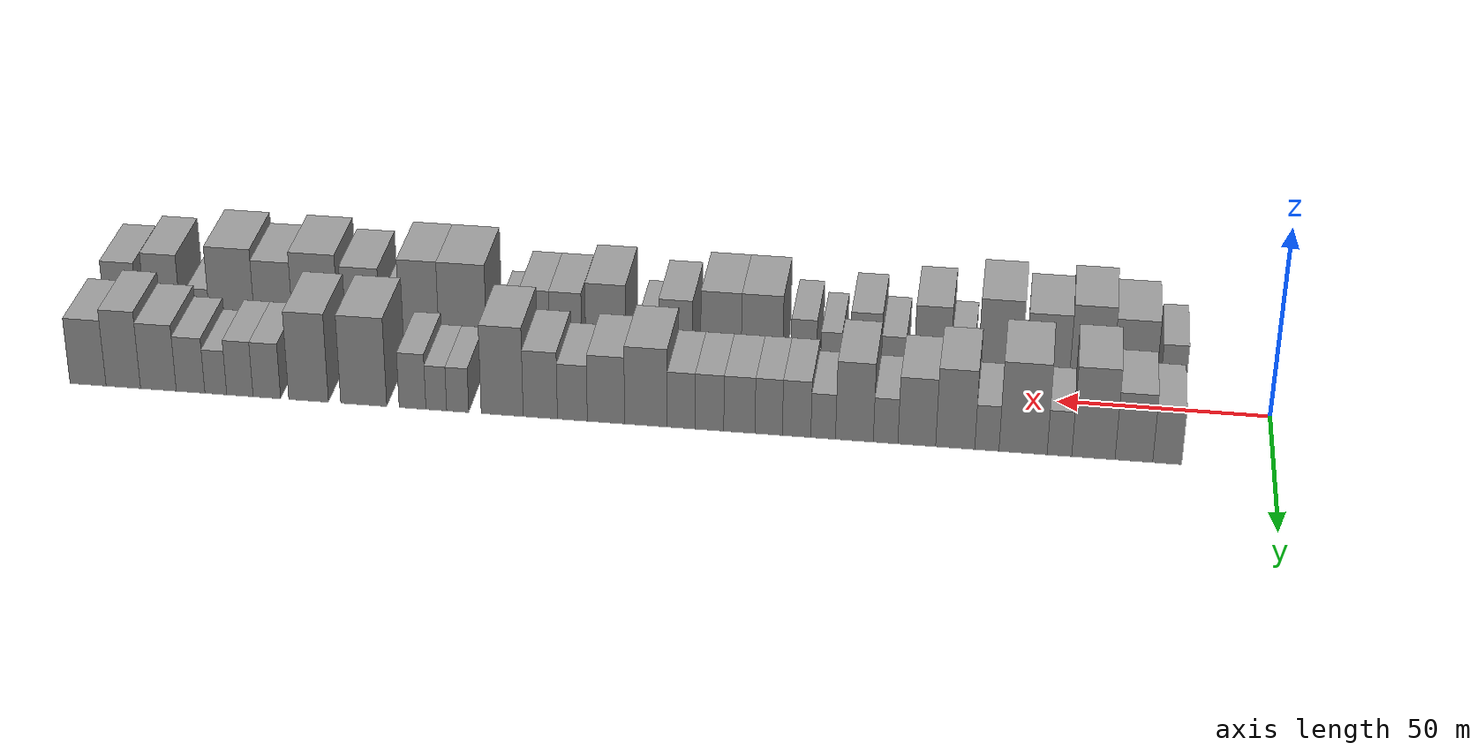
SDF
<sdf version="1.6">
 <world name="default">
  <scene>
   <sky><clouds><speed>12</speed></clouds></sky>
   <ambient>0.4 0.4 0.4 1</ambient>
   <background>0.7 0.7 0.7 1</background>
   <shadows>1</shadows>
  </scene>
  <gravity>0 0 -9.8066</gravity>
  <magnetic_field>6e-06 2.3e-05 -4.2e-05</magnetic_field>
  <physics default="0" name="default_physics" type="ode">
   <ode>
    <solver>
     <type>quick</type>
     <iters>10</iters>
     <sor>1.0</sor>
     <use_dynamic_moi_rescaling>0</use_dynamic_moi_rescaling>
    </solver>
    <constraints>
     <cfm>0</cfm>
     <erp>0.2</erp>
     <contact_max_correcting_vel>100</contact_max_correcting_vel>
     <contact_surface_layer>0.001</contact_surface_layer>
    </constraints>
   </ode>
   <max_step_size>0.004</max_step_size>
   <real_time_factor>1</real_time_factor>
   <real_time_update_rate>250</real_time_update_rate>
  </physics>
  <light name="sun" type="directional">
   <pose>0 0 10 0 0 0</pose>
   <diffuse>0.8 0.8 0.8 1</diffuse>
   <specular>0.2 0.2 0.2 1</specular>
   <attenuation>
    <range>1000</range>
    <constant>0.9</constant>
    <linear>0.01</linear>
    <quadratic>0.001</quadratic>
   </attenuation>
   <direction>-0.5 0.1 -0.9</direction>
  </light>
  <model name="building_1">
   <static>1</static>
   <pose>24.3070 14.5000 0 0.000000 0.000000 1.570796</pose>
   <link name="link">
    <pose>0 0 7.50 0 0 0</pose>
    <collision name="collision"><geometry><box><size>20.0000 6.6139 15.0000</size></box></geometry></collision>
    <visual name="visual">
     <cast_shadows>0</cast_shadows>
     <geometry><box><size>20.0000 6.6139 15.0000</size></box></geometry>
     <material>
      <script>
       <uri>model://grey_wall/materials/scripts</uri>
       <uri>model://grey_wall/materials/textures</uri>
       <name>vrc/grey_wall</name>
      </script>
     </material>
    </visual>
   </link>
  </model>
  <model name="building_2">
   <static>1</static>
   <pose>31.9232 14.5000 0 0.000000 0.000000 1.570796</pose>
   <link name="link">
    <pose>0 0 9.00 0 0 0</pose>
    <collision name="collision"><geometry><box><size>20.0000 8.6186 18.0000</size></box></geometry></collision>
    <visual name="visual">
     <cast_shadows>0</cast_shadows>
     <geometry><box><size>20.0000 8.6186 18.0000</size></box></geometry>
     <material>
      <script>
       <uri>model://grey_wall/materials/scripts</uri>
       <uri>model://grey_wall/materials/textures</uri>
       <name>vrc/grey_wall</name>
      </script>
     </material>
    </visual>
   </link>
  </model>
  <model name="building_3">
   <static>1</static>
   <pose>41.1928 14.5000 0 0.000000 0.000000 1.570796</pose>
   <link name="link">
    <pose>0 0 12.00 0 0 0</pose>
    <collision name="collision"><geometry><box><size>20.0000 9.9206 24.0000</size></box></geometry></collision>
    <visual name="visual">
     <cast_shadows>0</cast_shadows>
     <geometry><box><size>20.0000 9.9206 24.0000</size></box></geometry>
     <material>
      <script>
       <uri>model://grey_wall/materials/scripts</uri>
       <uri>model://grey_wall/materials/textures</uri>
       <name>vrc/grey_wall</name>
      </script>
     </material>
    </visual>
   </link>
  </model>
  <model name="building_4">
   <static>1</static>
   <pose>48.9845 14.5000 0 0.000000 0.000000 1.570796</pose>
   <link name="link">
    <pose>0 0 6.00 0 0 0</pose>
    <collision name="collision"><geometry><box><size>20.0000 5.6629 12.0000</size></box></geometry></collision>
    <visual name="visual">
     <cast_shadows>0</cast_shadows>
     <geometry><box><size>20.0000 5.6629 12.0000</size></box></geometry>
     <material>
      <script>
       <uri>model://grey_wall/materials/scripts</uri>
       <uri>model://grey_wall/materials/textures</uri>
       <name>vrc/grey_wall</name>
      </script>
     </material>
    </visual>
   </link>
  </model>
  <model name="building_5">
   <static>1</static>
   <pose>57.3648 14.5000 0 0.000000 0.000000 1.570796</pose>
   <link name="link">
    <pose>0 0 12.00 0 0 0</pose>
    <collision name="collision"><geometry><box><size>20.0000 11.0977 24.0000</size></box></geometry></collision>
    <visual name="visual">
     <cast_shadows>0</cast_shadows>
     <geometry><box><size>20.0000 11.0977 24.0000</size></box></geometry>
     <material>
      <script>
       <uri>model://grey_wall/materials/scripts</uri>
       <uri>model://grey_wall/materials/textures</uri>
       <name>vrc/grey_wall</name>
      </script>
     </material>
    </visual>
   </link>
  </model>
  <model name="building_6">
   <static>1</static>
   <pose>65.7075 14.5000 0 0.000000 0.000000 1.570796</pose>
   <link name="link">
    <pose>0 0 6.00 0 0 0</pose>
    <collision name="collision"><geometry><box><size>20.0000 5.5876 12.0000</size></box></geometry></collision>
    <visual name="visual">
     <cast_shadows>0</cast_shadows>
     <geometry><box><size>20.0000 5.5876 12.0000</size></box></geometry>
     <material>
      <script>
       <uri>model://grey_wall/materials/scripts</uri>
       <uri>model://grey_wall/materials/textures</uri>
       <name>vrc/grey_wall</name>
      </script>
     </material>
    </visual>
   </link>
  </model>
  <model name="building_7">
   <static>1</static>
   <pose>73.0353 14.5000 0 0.000000 0.000000 1.570796</pose>
   <link name="link">
    <pose>0 0 10.50 0 0 0</pose>
    <collision name="collision"><geometry><box><size>20.0000 9.0681 21.0000</size></box></geometry></collision>
    <visual name="visual">
     <cast_shadows>0</cast_shadows>
     <geometry><box><size>20.0000 9.0681 21.0000</size></box></geometry>
     <material>
      <script>
       <uri>model://grey_wall/materials/scripts</uri>
       <uri>model://grey_wall/materials/textures</uri>
       <name>vrc/grey_wall</name>
      </script>
     </material>
    </visual>
   </link>
  </model>
  <model name="building_8">
   <static>1</static>
   <pose>81.9653 14.5000 0 0.000000 0.000000 1.570796</pose>
   <link name="link">
    <pose>0 0 9.00 0 0 0</pose>
    <collision name="collision"><geometry><box><size>20.0000 8.7918 18.0000</size></box></geometry></collision>
    <visual name="visual">
     <cast_shadows>0</cast_shadows>
     <geometry><box><size>20.0000 8.7918 18.0000</size></box></geometry>
     <material>
      <script>
       <uri>model://grey_wall/materials/scripts</uri>
       <uri>model://grey_wall/materials/textures</uri>
       <name>vrc/grey_wall</name>
      </script>
     </material>
    </visual>
   </link>
  </model>
  <model name="building_9">
   <static>1</static>
   <pose>89.2294 14.5000 0 0.000000 0.000000 1.570796</pose>
   <link name="link">
    <pose>0 0 6.00 0 0 0</pose>
    <collision name="collision"><geometry><box><size>20.0000 5.7364 12.0000</size></box></geometry></collision>
    <visual name="visual">
     <cast_shadows>0</cast_shadows>
     <geometry><box><size>20.0000 5.7364 12.0000</size></box></geometry>
     <material>
      <script>
       <uri>model://grey_wall/materials/scripts</uri>
       <uri>model://grey_wall/materials/textures</uri>
       <name>vrc/grey_wall</name>
      </script>
     </material>
    </visual>
   </link>
  </model>
  <model name="building_10">
   <static>1</static>
   <pose>96.5183 14.5000 0 0.000000 0.000000 1.570796</pose>
   <link name="link">
    <pose>0 0 10.50 0 0 0</pose>
    <collision name="collision"><geometry><box><size>20.0000 8.8415 21.0000</size></box></geometry></collision>
    <visual name="visual">
     <cast_shadows>0</cast_shadows>
     <geometry><box><size>20.0000 8.8415 21.0000</size></box></geometry>
     <material>
      <script>
       <uri>model://grey_wall/materials/scripts</uri>
       <uri>model://grey_wall/materials/textures</uri>
       <name>vrc/grey_wall</name>
      </script>
     </material>
    </visual>
   </link>
  </model>
  <model name="building_11">
   <static>1</static>
   <pose>103.8284 14.5000 0 0.000000 0.000000 1.570796</pose>
   <link name="link">
    <pose>0 0 6.00 0 0 0</pose>
    <collision name="collision"><geometry><box><size>20.0000 5.7787 12.0000</size></box></geometry></collision>
    <visual name="visual">
     <cast_shadows>0</cast_shadows>
     <geometry><box><size>20.0000 5.7787 12.0000</size></box></geometry>
     <material>
      <script>
       <uri>model://grey_wall/materials/scripts</uri>
       <uri>model://grey_wall/materials/textures</uri>
       <name>vrc/grey_wall</name>
      </script>
     </material>
    </visual>
   </link>
  </model>
  <model name="building_12">
   <static>1</static>
   <pose>110.0669 14.5000 0 0.000000 0.000000 1.570796</pose>
   <link name="link">
    <pose>0 0 7.50 0 0 0</pose>
    <collision name="collision"><geometry><box><size>20.0000 6.6983 15.0000</size></box></geometry></collision>
    <visual name="visual">
     <cast_shadows>0</cast_shadows>
     <geometry><box><size>20.0000 6.6983 15.0000</size></box></geometry>
     <material>
      <script>
       <uri>model://grey_wall/materials/scripts</uri>
       <uri>model://grey_wall/materials/textures</uri>
       <name>vrc/grey_wall</name>
      </script>
     </material>
    </visual>
   </link>
  </model>
  <model name="building_13">
   <static>1</static>
   <pose>116.6327 14.5000 0 0.000000 0.000000 1.570796</pose>
   <link name="link">
    <pose>0 0 7.50 0 0 0</pose>
    <collision name="collision"><geometry><box><size>20.0000 6.4335 15.0000</size></box></geometry></collision>
    <visual name="visual">
     <cast_shadows>0</cast_shadows>
     <geometry><box><size>20.0000 6.4335 15.0000</size></box></geometry>
     <material>
      <script>
       <uri>model://grey_wall/materials/scripts</uri>
       <uri>model://grey_wall/materials/textures</uri>
       <name>vrc/grey_wall</name>
      </script>
     </material>
    </visual>
   </link>
  </model>
  <model name="building_14">
   <static>1</static>
   <pose>123.5289 14.5000 0 0.000000 0.000000 1.570796</pose>
   <link name="link">
    <pose>0 0 7.50 0 0 0</pose>
    <collision name="collision"><geometry><box><size>20.0000 7.3588 15.0000</size></box></geometry></collision>
    <visual name="visual">
     <cast_shadows>0</cast_shadows>
     <geometry><box><size>20.0000 7.3588 15.0000</size></box></geometry>
     <material>
      <script>
       <uri>model://grey_wall/materials/scripts</uri>
       <uri>model://grey_wall/materials/textures</uri>
       <name>vrc/grey_wall</name>
      </script>
     </material>
    </visual>
   </link>
  </model>
  <model name="building_15">
   <static>1</static>
   <pose>130.6145 14.5000 0 0.000000 0.000000 1.570796</pose>
   <link name="link">
    <pose>0 0 7.50 0 0 0</pose>
    <collision name="collision"><geometry><box><size>20.0000 6.8125 15.0000</size></box></geometry></collision>
    <visual name="visual">
     <cast_shadows>0</cast_shadows>
     <geometry><box><size>20.0000 6.8125 15.0000</size></box></geometry>
     <material>
      <script>
       <uri>model://grey_wall/materials/scripts</uri>
       <uri>model://grey_wall/materials/textures</uri>
       <name>vrc/grey_wall</name>
      </script>
     </material>
    </visual>
   </link>
  </model>
  <model name="building_16">
   <static>1</static>
   <pose>137.3013 14.5000 0 0.000000 0.000000 1.570796</pose>
   <link name="link">
    <pose>0 0 7.50 0 0 0</pose>
    <collision name="collision"><geometry><box><size>20.0000 6.5612 15.0000</size></box></geometry></collision>
    <visual name="visual">
     <cast_shadows>0</cast_shadows>
     <geometry><box><size>20.0000 6.5612 15.0000</size></box></geometry>
     <material>
      <script>
       <uri>model://grey_wall/materials/scripts</uri>
       <uri>model://grey_wall/materials/textures</uri>
       <name>vrc/grey_wall</name>
      </script>
     </material>
    </visual>
   </link>
  </model>
  <model name="building_17">
   <static>1</static>
   <pose>145.6593 14.5000 0 0.000000 0.000000 1.570796</pose>
   <link name="link">
    <pose>0 0 10.50 0 0 0</pose>
    <collision name="collision"><geometry><box><size>20.0000 10.1548 21.0000</size></box></geometry></collision>
    <visual name="visual">
     <cast_shadows>0</cast_shadows>
     <geometry><box><size>20.0000 10.1548 21.0000</size></box></geometry>
     <material>
      <script>
       <uri>model://grey_wall/materials/scripts</uri>
       <uri>model://grey_wall/materials/textures</uri>
       <name>vrc/grey_wall</name>
      </script>
     </material>
    </visual>
   </link>
  </model>
  <model name="building_18">
   <static>1</static>
   <pose>155.1751 14.5000 0 0.000000 0.000000 1.570796</pose>
   <link name="link">
    <pose>0 0 9.00 0 0 0</pose>
    <collision name="collision"><geometry><box><size>20.0000 8.8768 18.0000</size></box></geometry></collision>
    <visual name="visual">
     <cast_shadows>0</cast_shadows>
     <geometry><box><size>20.0000 8.8768 18.0000</size></box></geometry>
     <material>
      <script>
       <uri>model://grey_wall/materials/scripts</uri>
       <uri>model://grey_wall/materials/textures</uri>
       <name>vrc/grey_wall</name>
      </script>
     </material>
    </visual>
   </link>
  </model>
  <model name="building_19">
   <static>1</static>
   <pose>163.1832 14.5000 0 0.000000 0.000000 1.570796</pose>
   <link name="link">
    <pose>0 0 7.50 0 0 0</pose>
    <collision name="collision"><geometry><box><size>20.0000 7.1393 15.0000</size></box></geometry></collision>
    <visual name="visual">
     <cast_shadows>0</cast_shadows>
     <geometry><box><size>20.0000 7.1393 15.0000</size></box></geometry>
     <material>
      <script>
       <uri>model://grey_wall/materials/scripts</uri>
       <uri>model://grey_wall/materials/textures</uri>
       <name>vrc/grey_wall</name>
      </script>
     </material>
    </visual>
   </link>
  </model>
  <model name="building_20">
   <static>1</static>
   <pose>170.8533 14.5000 0 0.000000 0.000000 1.570796</pose>
   <link name="link">
    <pose>0 0 9.00 0 0 0</pose>
    <collision name="collision"><geometry><box><size>20.0000 8.2009 18.0000</size></box></geometry></collision>
    <visual name="visual">
     <cast_shadows>0</cast_shadows>
     <geometry><box><size>20.0000 8.2009 18.0000</size></box></geometry>
     <material>
      <script>
       <uri>model://grey_wall/materials/scripts</uri>
       <uri>model://grey_wall/materials/textures</uri>
       <name>vrc/grey_wall</name>
      </script>
     </material>
    </visual>
   </link>
  </model>
  <model name="building_21">
   <static>1</static>
   <pose>180.0035 14.5000 0 0.000000 0.000000 1.570796</pose>
   <link name="link">
    <pose>0 0 12.00 0 0 0</pose>
    <collision name="collision"><geometry><box><size>20.0000 10.0996 24.0000</size></box></geometry></collision>
    <visual name="visual">
     <cast_shadows>0</cast_shadows>
     <geometry><box><size>20.0000 10.0996 24.0000</size></box></geometry>
     <material>
      <script>
       <uri>model://grey_wall/materials/scripts</uri>
       <uri>model://grey_wall/materials/textures</uri>
       <name>vrc/grey_wall</name>
      </script>
     </material>
    </visual>
   </link>
  </model>
  <model name="building_22">
   <static>1</static>
   <pose>190.7245 14.5000 0 0.000000 0.000000 1.570796</pose>
   <link name="link">
    <pose>0 0 6.00 0 0 0</pose>
    <collision name="collision"><geometry><box><size>20.0000 5.3423 12.0000</size></box></geometry></collision>
    <visual name="visual">
     <cast_shadows>0</cast_shadows>
     <geometry><box><size>20.0000 5.3423 12.0000</size></box></geometry>
     <material>
      <script>
       <uri>model://grey_wall/materials/scripts</uri>
       <uri>model://grey_wall/materials/textures</uri>
       <name>vrc/grey_wall</name>
      </script>
     </material>
    </visual>
   </link>
  </model>
  <model name="building_23">
   <static>1</static>
   <pose>195.9058 14.5000 0 0.000000 0.000000 1.570796</pose>
   <link name="link">
    <pose>0 0 6.00 0 0 0</pose>
    <collision name="collision"><geometry><box><size>20.0000 5.0203 12.0000</size></box></geometry></collision>
    <visual name="visual">
     <cast_shadows>0</cast_shadows>
     <geometry><box><size>20.0000 5.0203 12.0000</size></box></geometry>
     <material>
      <script>
       <uri>model://grey_wall/materials/scripts</uri>
       <uri>model://grey_wall/materials/textures</uri>
       <name>vrc/grey_wall</name>
      </script>
     </material>
    </visual>
   </link>
  </model>
  <model name="building_24">
   <static>1</static>
   <pose>201.6565 14.5000 0 0.000000 0.000000 1.570796</pose>
   <link name="link">
    <pose>0 0 7.50 0 0 0</pose>
    <collision name="collision"><geometry><box><size>20.0000 6.4810 15.0000</size></box></geometry></collision>
    <visual name="visual">
     <cast_shadows>0</cast_shadows>
     <geometry><box><size>20.0000 6.4810 15.0000</size></box></geometry>
     <material>
      <script>
       <uri>model://grey_wall/materials/scripts</uri>
       <uri>model://grey_wall/materials/textures</uri>
       <name>vrc/grey_wall</name>
      </script>
     </material>
    </visual>
   </link>
  </model>
  <model name="building_25">
   <static>1</static>
   <pose>213.5023 14.5000 0 0.000000 0.000000 1.570796</pose>
   <link name="link">
    <pose>0 0 12.00 0 0 0</pose>
    <collision name="collision"><geometry><box><size>20.0000 11.2107 24.0000</size></box></geometry></collision>
    <visual name="visual">
     <cast_shadows>0</cast_shadows>
     <geometry><box><size>20.0000 11.2107 24.0000</size></box></geometry>
     <material>
      <script>
       <uri>model://grey_wall/materials/scripts</uri>
       <uri>model://grey_wall/materials/textures</uri>
       <name>vrc/grey_wall</name>
      </script>
     </material>
    </visual>
   </link>
  </model>
  <model name="building_26">
   <static>1</static>
   <pose>226.9615 14.5000 0 0.000000 0.000000 1.570796</pose>
   <link name="link">
    <pose>0 0 12.00 0 0 0</pose>
    <collision name="collision"><geometry><box><size>20.0000 9.7077 24.0000</size></box></geometry></collision>
    <visual name="visual">
     <cast_shadows>0</cast_shadows>
     <geometry><box><size>20.0000 9.7077 24.0000</size></box></geometry>
     <material>
      <script>
       <uri>model://grey_wall/materials/scripts</uri>
       <uri>model://grey_wall/materials/textures</uri>
       <name>vrc/grey_wall</name>
      </script>
     </material>
    </visual>
   </link>
  </model>
  <model name="building_27">
   <static>1</static>
   <pose>237.1932 14.5000 0 0.000000 0.000000 1.570796</pose>
   <link name="link">
    <pose>0 0 7.50 0 0 0</pose>
    <collision name="collision"><geometry><box><size>20.0000 6.7558 15.0000</size></box></geometry></collision>
    <visual name="visual">
     <cast_shadows>0</cast_shadows>
     <geometry><box><size>20.0000 6.7558 15.0000</size></box></geometry>
     <material>
      <script>
       <uri>model://grey_wall/materials/scripts</uri>
       <uri>model://grey_wall/materials/textures</uri>
       <name>vrc/grey_wall</name>
      </script>
     </material>
    </visual>
   </link>
  </model>
  <model name="building_28">
   <static>1</static>
   <pose>243.8081 14.5000 0 0.000000 0.000000 1.570796</pose>
   <link name="link">
    <pose>0 0 7.50 0 0 0</pose>
    <collision name="collision"><geometry><box><size>20.0000 6.4741 15.0000</size></box></geometry></collision>
    <visual name="visual">
     <cast_shadows>0</cast_shadows>
     <geometry><box><size>20.0000 6.4741 15.0000</size></box></geometry>
     <material>
      <script>
       <uri>model://grey_wall/materials/scripts</uri>
       <uri>model://grey_wall/materials/textures</uri>
       <name>vrc/grey_wall</name>
      </script>
     </material>
    </visual>
   </link>
  </model>
  <model name="building_29">
   <static>1</static>
   <pose>249.7371 14.5000 0 0.000000 0.000000 1.570796</pose>
   <link name="link">
    <pose>0 0 6.00 0 0 0</pose>
    <collision name="collision"><geometry><box><size>20.0000 5.3839 12.0000</size></box></geometry></collision>
    <visual name="visual">
     <cast_shadows>0</cast_shadows>
     <geometry><box><size>20.0000 5.3839 12.0000</size></box></geometry>
     <material>
      <script>
       <uri>model://grey_wall/materials/scripts</uri>
       <uri>model://grey_wall/materials/textures</uri>
       <name>vrc/grey_wall</name>
      </script>
     </material>
    </visual>
   </link>
  </model>
  <model name="building_30">
   <static>1</static>
   <pose>255.9594 14.5000 0 0.000000 0.000000 1.570796</pose>
   <link name="link">
    <pose>0 0 7.50 0 0 0</pose>
    <collision name="collision"><geometry><box><size>20.0000 7.0605 15.0000</size></box></geometry></collision>
    <visual name="visual">
     <cast_shadows>0</cast_shadows>
     <geometry><box><size>20.0000 7.0605 15.0000</size></box></geometry>
     <material>
      <script>
       <uri>model://grey_wall/materials/scripts</uri>
       <uri>model://grey_wall/materials/textures</uri>
       <name>vrc/grey_wall</name>
      </script>
     </material>
    </visual>
   </link>
  </model>
  <model name="building_31">
   <static>1</static>
   <pose>263.9150 14.5000 0 0.000000 0.000000 1.570796</pose>
   <link name="link">
    <pose>0 0 9.00 0 0 0</pose>
    <collision name="collision"><geometry><box><size>20.0000 8.8508 18.0000</size></box></geometry></collision>
    <visual name="visual">
     <cast_shadows>0</cast_shadows>
     <geometry><box><size>20.0000 8.8508 18.0000</size></box></geometry>
     <material>
      <script>
       <uri>model://grey_wall/materials/scripts</uri>
       <uri>model://grey_wall/materials/textures</uri>
       <name>vrc/grey_wall</name>
      </script>
     </material>
    </visual>
   </link>
  </model>
  <model name="building_32">
   <static>1</static>
   <pose>272.6241 14.5000 0 0.000000 0.000000 1.570796</pose>
   <link name="link">
    <pose>0 0 10.50 0 0 0</pose>
    <collision name="collision"><geometry><box><size>20.0000 8.5672 21.0000</size></box></geometry></collision>
    <visual name="visual">
     <cast_shadows>0</cast_shadows>
     <geometry><box><size>20.0000 8.5672 21.0000</size></box></geometry>
     <material>
      <script>
       <uri>model://grey_wall/materials/scripts</uri>
       <uri>model://grey_wall/materials/textures</uri>
       <name>vrc/grey_wall</name>
      </script>
     </material>
    </visual>
   </link>
  </model>
  <model name="building_33">
   <static>1</static>
   <pose>281.3903 14.5000 0 0.000000 0.000000 1.570796</pose>
   <link name="link">
    <pose>0 0 9.00 0 0 0</pose>
    <collision name="collision"><geometry><box><size>20.0000 8.9652 18.0000</size></box></geometry></collision>
    <visual name="visual">
     <cast_shadows>0</cast_shadows>
     <geometry><box><size>20.0000 8.9652 18.0000</size></box></geometry>
     <material>
      <script>
       <uri>model://grey_wall/materials/scripts</uri>
       <uri>model://grey_wall/materials/textures</uri>
       <name>vrc/grey_wall</name>
      </script>
     </material>
    </visual>
   </link>
  </model>
  <model name="building_34">
   <static>1</static>
   <pose>23.0090 -14.5000 0 0.000000 0.000000 1.570796</pose>
   <link name="link">
    <pose>0 0 7.50 0 0 0</pose>
    <collision name="collision"><geometry><box><size>20.0000 6.0180 15.0000</size></box></geometry></collision>
    <visual name="visual">
     <cast_shadows>0</cast_shadows>
     <geometry><box><size>20.0000 6.0180 15.0000</size></box></geometry>
     <material>
      <script>
       <uri>model://grey_wall/materials/scripts</uri>
       <uri>model://grey_wall/materials/textures</uri>
       <name>vrc/grey_wall</name>
      </script>
     </material>
    </visual>
   </link>
  </model>
  <model name="building_35">
   <static>1</static>
   <pose>32.1826 -14.5000 0 0.000000 0.000000 1.570796</pose>
   <link name="link">
    <pose>0 0 10.50 0 0 0</pose>
    <collision name="collision"><geometry><box><size>20.0000 10.3293 21.0000</size></box></geometry></collision>
    <visual name="visual">
     <cast_shadows>0</cast_shadows>
     <geometry><box><size>20.0000 10.3293 21.0000</size></box></geometry>
     <material>
      <script>
       <uri>model://grey_wall/materials/scripts</uri>
       <uri>model://grey_wall/materials/textures</uri>
       <name>vrc/grey_wall</name>
      </script>
     </material>
    </visual>
   </link>
  </model>
  <model name="building_36">
   <static>1</static>
   <pose>42.4412 -14.5000 0 0.000000 0.000000 1.570796</pose>
   <link name="link">
    <pose>0 0 12.00 0 0 0</pose>
    <collision name="collision"><geometry><box><size>20.0000 10.1880 24.0000</size></box></geometry></collision>
    <visual name="visual">
     <cast_shadows>0</cast_shadows>
     <geometry><box><size>20.0000 10.1880 24.0000</size></box></geometry>
     <material>
      <script>
       <uri>model://grey_wall/materials/scripts</uri>
       <uri>model://grey_wall/materials/textures</uri>
       <name>vrc/grey_wall</name>
      </script>
     </material>
    </visual>
   </link>
  </model>
  <model name="building_37">
   <static>1</static>
   <pose>52.7492 -14.5000 0 0.000000 0.000000 1.570796</pose>
   <link name="link">
    <pose>0 0 10.50 0 0 0</pose>
    <collision name="collision"><geometry><box><size>20.0000 10.4279 21.0000</size></box></geometry></collision>
    <visual name="visual">
     <cast_shadows>0</cast_shadows>
     <geometry><box><size>20.0000 10.4279 21.0000</size></box></geometry>
     <material>
      <script>
       <uri>model://grey_wall/materials/scripts</uri>
       <uri>model://grey_wall/materials/textures</uri>
       <name>vrc/grey_wall</name>
      </script>
     </material>
    </visual>
   </link>
  </model>
  <model name="building_38">
   <static>1</static>
   <pose>64.1693 -14.5000 0 0.000000 0.000000 1.570796</pose>
   <link name="link">
    <pose>0 0 12.00 0 0 0</pose>
    <collision name="collision"><geometry><box><size>20.0000 10.4124 24.0000</size></box></geometry></collision>
    <visual name="visual">
     <cast_shadows>0</cast_shadows>
     <geometry><box><size>20.0000 10.4124 24.0000</size></box></geometry>
     <material>
      <script>
       <uri>model://grey_wall/materials/scripts</uri>
       <uri>model://grey_wall/materials/textures</uri>
       <name>vrc/grey_wall</name>
      </script>
     </material>
    </visual>
   </link>
  </model>
  <model name="building_39">
   <static>1</static>
   <pose>73.1631 -14.5000 0 0.000000 0.000000 1.570796</pose>
   <link name="link">
    <pose>0 0 6.00 0 0 0</pose>
    <collision name="collision"><geometry><box><size>20.0000 5.5752 12.0000</size></box></geometry></collision>
    <visual name="visual">
     <cast_shadows>0</cast_shadows>
     <geometry><box><size>20.0000 5.5752 12.0000</size></box></geometry>
     <material>
      <script>
       <uri>model://grey_wall/materials/scripts</uri>
       <uri>model://grey_wall/materials/textures</uri>
       <name>vrc/grey_wall</name>
      </script>
     </material>
    </visual>
   </link>
  </model>
  <model name="building_40">
   <static>1</static>
   <pose>80.3299 -14.5000 0 0.000000 0.000000 1.570796</pose>
   <link name="link">
    <pose>0 0 10.50 0 0 0</pose>
    <collision name="collision"><geometry><box><size>20.0000 8.7584 21.0000</size></box></geometry></collision>
    <visual name="visual">
     <cast_shadows>0</cast_shadows>
     <geometry><box><size>20.0000 8.7584 21.0000</size></box></geometry>
     <material>
      <script>
       <uri>model://grey_wall/materials/scripts</uri>
       <uri>model://grey_wall/materials/textures</uri>
       <name>vrc/grey_wall</name>
      </script>
     </material>
    </visual>
   </link>
  </model>
  <model name="building_41">
   <static>1</static>
   <pose>89.6402 -14.5000 0 0.000000 0.000000 1.570796</pose>
   <link name="link">
    <pose>0 0 6.00 0 0 0</pose>
    <collision name="collision"><geometry><box><size>20.0000 5.8622 12.0000</size></box></geometry></collision>
    <visual name="visual">
     <cast_shadows>0</cast_shadows>
     <geometry><box><size>20.0000 5.8622 12.0000</size></box></geometry>
     <material>
      <script>
       <uri>model://grey_wall/materials/scripts</uri>
       <uri>model://grey_wall/materials/textures</uri>
       <name>vrc/grey_wall</name>
      </script>
     </material>
    </visual>
   </link>
  </model>
  <model name="building_42">
   <static>1</static>
   <pose>96.3569 -14.5000 0 0.000000 0.000000 1.570796</pose>
   <link name="link">
    <pose>0 0 9.00 0 0 0</pose>
    <collision name="collision"><geometry><box><size>20.0000 7.5712 18.0000</size></box></geometry></collision>
    <visual name="visual">
     <cast_shadows>0</cast_shadows>
     <geometry><box><size>20.0000 7.5712 18.0000</size></box></geometry>
     <material>
      <script>
       <uri>model://grey_wall/materials/scripts</uri>
       <uri>model://grey_wall/materials/textures</uri>
       <name>vrc/grey_wall</name>
      </script>
     </material>
    </visual>
   </link>
  </model>
  <model name="building_43">
   <static>1</static>
   <pose>104.6766 -14.5000 0 0.000000 0.000000 1.570796</pose>
   <link name="link">
    <pose>0 0 6.00 0 0 0</pose>
    <collision name="collision"><geometry><box><size>20.0000 5.0681 12.0000</size></box></geometry></collision>
    <visual name="visual">
     <cast_shadows>0</cast_shadows>
     <geometry><box><size>20.0000 5.0681 12.0000</size></box></geometry>
     <material>
      <script>
       <uri>model://grey_wall/materials/scripts</uri>
       <uri>model://grey_wall/materials/textures</uri>
       <name>vrc/grey_wall</name>
      </script>
     </material>
    </visual>
   </link>
  </model>
  <model name="building_44">
   <static>1</static>
   <pose>111.3216 -14.5000 0 0.000000 0.000000 1.570796</pose>
   <link name="link">
    <pose>0 0 7.50 0 0 0</pose>
    <collision name="collision"><geometry><box><size>20.0000 6.2220 15.0000</size></box></geometry></collision>
    <visual name="visual">
     <cast_shadows>0</cast_shadows>
     <geometry><box><size>20.0000 6.2220 15.0000</size></box></geometry>
     <material>
      <script>
       <uri>model://grey_wall/materials/scripts</uri>
       <uri>model://grey_wall/materials/textures</uri>
       <name>vrc/grey_wall</name>
      </script>
     </material>
    </visual>
   </link>
  </model>
  <model name="building_45">
   <static>1</static>
   <pose>121.4785 -14.5000 0 0.000000 0.000000 1.570796</pose>
   <link name="link">
    <pose>0 0 10.50 0 0 0</pose>
    <collision name="collision"><geometry><box><size>20.0000 10.0919 21.0000</size></box></geometry></collision>
    <visual name="visual">
     <cast_shadows>0</cast_shadows>
     <geometry><box><size>20.0000 10.0919 21.0000</size></box></geometry>
     <material>
      <script>
       <uri>model://grey_wall/materials/scripts</uri>
       <uri>model://grey_wall/materials/textures</uri>
       <name>vrc/grey_wall</name>
      </script>
     </material>
    </visual>
   </link>
  </model>
  <model name="building_46">
   <static>1</static>
   <pose>131.4741 -14.5000 0 0.000000 0.000000 1.570796</pose>
   <link name="link">
    <pose>0 0 10.50 0 0 0</pose>
    <collision name="collision"><geometry><box><size>20.0000 9.8993 21.0000</size></box></geometry></collision>
    <visual name="visual">
     <cast_shadows>0</cast_shadows>
     <geometry><box><size>20.0000 9.8993 21.0000</size></box></geometry>
     <material>
      <script>
       <uri>model://grey_wall/materials/scripts</uri>
       <uri>model://grey_wall/materials/textures</uri>
       <name>vrc/grey_wall</name>
      </script>
     </material>
    </visual>
   </link>
  </model>
  <model name="building_47">
   <static>1</static>
   <pose>142.5558 -14.5000 0 0.000000 0.000000 1.570796</pose>
   <link name="link">
    <pose>0 0 9.00 0 0 0</pose>
    <collision name="collision"><geometry><box><size>20.0000 8.2641 18.0000</size></box></geometry></collision>
    <visual name="visual">
     <cast_shadows>0</cast_shadows>
     <geometry><box><size>20.0000 8.2641 18.0000</size></box></geometry>
     <material>
      <script>
       <uri>model://grey_wall/materials/scripts</uri>
       <uri>model://grey_wall/materials/textures</uri>
       <name>vrc/grey_wall</name>
      </script>
     </material>
    </visual>
   </link>
  </model>
  <model name="building_48">
   <static>1</static>
   <pose>149.2443 -14.5000 0 0.000000 0.000000 1.570796</pose>
   <link name="link">
    <pose>0 0 6.00 0 0 0</pose>
    <collision name="collision"><geometry><box><size>20.0000 5.1128 12.0000</size></box></geometry></collision>
    <visual name="visual">
     <cast_shadows>0</cast_shadows>
     <geometry><box><size>20.0000 5.1128 12.0000</size></box></geometry>
     <material>
      <script>
       <uri>model://grey_wall/materials/scripts</uri>
       <uri>model://grey_wall/materials/textures</uri>
       <name>vrc/grey_wall</name>
      </script>
     </material>
    </visual>
   </link>
  </model>
  <model name="building_49">
   <static>1</static>
   <pose>159.7428 -14.5000 0 0.000000 0.000000 1.570796</pose>
   <link name="link">
    <pose>0 0 10.50 0 0 0</pose>
    <collision name="collision"><geometry><box><size>20.0000 9.8843 21.0000</size></box></geometry></collision>
    <visual name="visual">
     <cast_shadows>0</cast_shadows>
     <geometry><box><size>20.0000 9.8843 21.0000</size></box></geometry>
     <material>
      <script>
       <uri>model://grey_wall/materials/scripts</uri>
       <uri>model://grey_wall/materials/textures</uri>
       <name>vrc/grey_wall</name>
      </script>
     </material>
    </visual>
   </link>
  </model>
  <model name="building_50">
   <static>1</static>
   <pose>169.6677 -14.5000 0 0.000000 0.000000 1.570796</pose>
   <link name="link">
    <pose>0 0 9.00 0 0 0</pose>
    <collision name="collision"><geometry><box><size>20.0000 7.9654 18.0000</size></box></geometry></collision>
    <visual name="visual">
     <cast_shadows>0</cast_shadows>
     <geometry><box><size>20.0000 7.9654 18.0000</size></box></geometry>
     <material>
      <script>
       <uri>model://grey_wall/materials/scripts</uri>
       <uri>model://grey_wall/materials/textures</uri>
       <name>vrc/grey_wall</name>
      </script>
     </material>
    </visual>
   </link>
  </model>
  <model name="building_51">
   <static>1</static>
   <pose>177.2809 -14.5000 0 0.000000 0.000000 1.570796</pose>
   <link name="link">
    <pose>0 0 9.00 0 0 0</pose>
    <collision name="collision"><geometry><box><size>20.0000 7.2611 18.0000</size></box></geometry></collision>
    <visual name="visual">
     <cast_shadows>0</cast_shadows>
     <geometry><box><size>20.0000 7.2611 18.0000</size></box></geometry>
     <material>
      <script>
       <uri>model://grey_wall/materials/scripts</uri>
       <uri>model://grey_wall/materials/textures</uri>
       <name>vrc/grey_wall</name>
      </script>
     </material>
    </visual>
   </link>
  </model>
  <model name="building_52">
   <static>1</static>
   <pose>183.5952 -14.5000 0 0.000000 0.000000 1.570796</pose>
   <link name="link">
    <pose>0 0 6.00 0 0 0</pose>
    <collision name="collision"><geometry><box><size>20.0000 5.3674 12.0000</size></box></geometry></collision>
    <visual name="visual">
     <cast_shadows>0</cast_shadows>
     <geometry><box><size>20.0000 5.3674 12.0000</size></box></geometry>
     <material>
      <script>
       <uri>model://grey_wall/materials/scripts</uri>
       <uri>model://grey_wall/materials/textures</uri>
       <name>vrc/grey_wall</name>
      </script>
     </material>
    </visual>
   </link>
  </model>
  <model name="building_53">
   <static>1</static>
   <pose>195.2286 -14.5000 0 0.000000 0.000000 1.570796</pose>
   <link name="link">
    <pose>0 0 12.00 0 0 0</pose>
    <collision name="collision"><geometry><box><size>20.0000 11.8994 24.0000</size></box></geometry></collision>
    <visual name="visual">
     <cast_shadows>0</cast_shadows>
     <geometry><box><size>20.0000 11.8994 24.0000</size></box></geometry>
     <material>
      <script>
       <uri>model://grey_wall/materials/scripts</uri>
       <uri>model://grey_wall/materials/textures</uri>
       <name>vrc/grey_wall</name>
      </script>
     </material>
    </visual>
   </link>
  </model>
  <model name="building_54">
   <static>1</static>
   <pose>206.0644 -14.5000 0 0.000000 0.000000 1.570796</pose>
   <link name="link">
    <pose>0 0 12.00 0 0 0</pose>
    <collision name="collision"><geometry><box><size>20.0000 9.7721 24.0000</size></box></geometry></collision>
    <visual name="visual">
     <cast_shadows>0</cast_shadows>
     <geometry><box><size>20.0000 9.7721 24.0000</size></box></geometry>
     <material>
      <script>
       <uri>model://grey_wall/materials/scripts</uri>
       <uri>model://grey_wall/materials/textures</uri>
       <name>vrc/grey_wall</name>
      </script>
     </material>
    </visual>
   </link>
  </model>
  <model name="building_55">
   <static>1</static>
   <pose>213.4082 -14.5000 0 0.000000 0.000000 1.570796</pose>
   <link name="link">
    <pose>0 0 6.00 0 0 0</pose>
    <collision name="collision"><geometry><box><size>20.0000 4.9154 12.0000</size></box></geometry></collision>
    <visual name="visual">
     <cast_shadows>0</cast_shadows>
     <geometry><box><size>20.0000 4.9154 12.0000</size></box></geometry>
     <material>
      <script>
       <uri>model://grey_wall/materials/scripts</uri>
       <uri>model://grey_wall/materials/textures</uri>
       <name>vrc/grey_wall</name>
      </script>
     </material>
    </visual>
   </link>
  </model>
  <model name="building_56">
   <static>1</static>
   <pose>220.6247 -14.5000 0 0.000000 0.000000 1.570796</pose>
   <link name="link">
    <pose>0 0 10.50 0 0 0</pose>
    <collision name="collision"><geometry><box><size>20.0000 9.5177 21.0000</size></box></geometry></collision>
    <visual name="visual">
     <cast_shadows>0</cast_shadows>
     <geometry><box><size>20.0000 9.5177 21.0000</size></box></geometry>
     <material>
      <script>
       <uri>model://grey_wall/materials/scripts</uri>
       <uri>model://grey_wall/materials/textures</uri>
       <name>vrc/grey_wall</name>
      </script>
     </material>
    </visual>
   </link>
  </model>
  <model name="building_57">
   <static>1</static>
   <pose>232.1522 -14.5000 0 0.000000 0.000000 1.570796</pose>
   <link name="link">
    <pose>0 0 12.00 0 0 0</pose>
    <collision name="collision"><geometry><box><size>20.0000 11.5373 24.0000</size></box></geometry></collision>
    <visual name="visual">
     <cast_shadows>0</cast_shadows>
     <geometry><box><size>20.0000 11.5373 24.0000</size></box></geometry>
     <material>
      <script>
       <uri>model://grey_wall/materials/scripts</uri>
       <uri>model://grey_wall/materials/textures</uri>
       <name>vrc/grey_wall</name>
      </script>
     </material>
    </visual>
   </link>
  </model>
  <model name="building_58">
   <static>1</static>
   <pose>242.7516 -14.5000 0 0.000000 0.000000 1.570796</pose>
   <link name="link">
    <pose>0 0 10.50 0 0 0</pose>
    <collision name="collision"><geometry><box><size>20.0000 9.6615 21.0000</size></box></geometry></collision>
    <visual name="visual">
     <cast_shadows>0</cast_shadows>
     <geometry><box><size>20.0000 9.6615 21.0000</size></box></geometry>
     <material>
      <script>
       <uri>model://grey_wall/materials/scripts</uri>
       <uri>model://grey_wall/materials/textures</uri>
       <name>vrc/grey_wall</name>
      </script>
     </material>
    </visual>
   </link>
  </model>
  <model name="building_59">
   <static>1</static>
   <pose>253.3083 -14.5000 0 0.000000 0.000000 1.570796</pose>
   <link name="link">
    <pose>0 0 12.00 0 0 0</pose>
    <collision name="collision"><geometry><box><size>20.0000 11.4520 24.0000</size></box></geometry></collision>
    <visual name="visual">
     <cast_shadows>0</cast_shadows>
     <geometry><box><size>20.0000 11.4520 24.0000</size></box></geometry>
     <material>
      <script>
       <uri>model://grey_wall/materials/scripts</uri>
       <uri>model://grey_wall/materials/textures</uri>
       <name>vrc/grey_wall</name>
      </script>
     </material>
    </visual>
   </link>
  </model>
  <model name="building_60">
   <static>1</static>
   <pose>261.7323 -14.5000 0 0.000000 0.000000 1.570796</pose>
   <link name="link">
    <pose>0 0 6.00 0 0 0</pose>
    <collision name="collision"><geometry><box><size>20.0000 5.3960 12.0000</size></box></geometry></collision>
    <visual name="visual">
     <cast_shadows>0</cast_shadows>
     <geometry><box><size>20.0000 5.3960 12.0000</size></box></geometry>
     <material>
      <script>
       <uri>model://grey_wall/materials/scripts</uri>
       <uri>model://grey_wall/materials/textures</uri>
       <name>vrc/grey_wall</name>
      </script>
     </material>
    </visual>
   </link>
  </model>
  <model name="building_61">
   <static>1</static>
   <pose>270.9341 -14.5000 0 0.000000 0.000000 1.570796</pose>
   <link name="link">
    <pose>0 0 10.50 0 0 0</pose>
    <collision name="collision"><geometry><box><size>20.0000 9.0076 21.0000</size></box></geometry></collision>
    <visual name="visual">
     <cast_shadows>0</cast_shadows>
     <geometry><box><size>20.0000 9.0076 21.0000</size></box></geometry>
     <material>
      <script>
       <uri>model://grey_wall/materials/scripts</uri>
       <uri>model://grey_wall/materials/textures</uri>
       <name>vrc/grey_wall</name>
      </script>
     </material>
    </visual>
   </link>
  </model>
  <model name="building_62">
   <static>1</static>
   <pose>281.6700 -14.5000 0 0.000000 0.000000 1.570796</pose>
   <link name="link">
    <pose>0 0 9.00 0 0 0</pose>
    <collision name="collision"><geometry><box><size>20.0000 8.4642 18.0000</size></box></geometry></collision>
    <visual name="visual">
     <cast_shadows>0</cast_shadows>
     <geometry><box><size>20.0000 8.4642 18.0000</size></box></geometry>
     <material>
      <script>
       <uri>model://grey_wall/materials/scripts</uri>
       <uri>model://grey_wall/materials/textures</uri>
       <name>vrc/grey_wall</name>
      </script>
     </material>
    </visual>
   </link>
  </model>
 </world>
</sdf>
